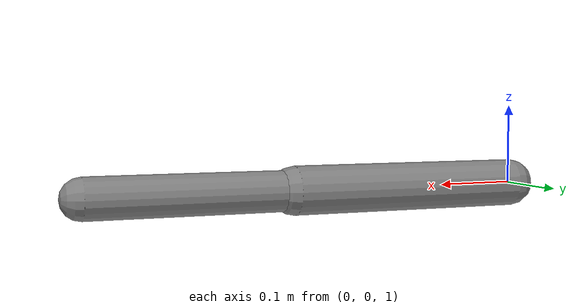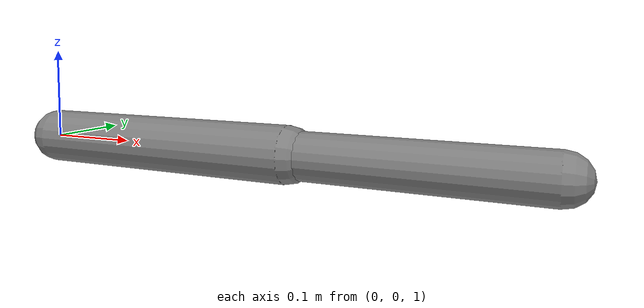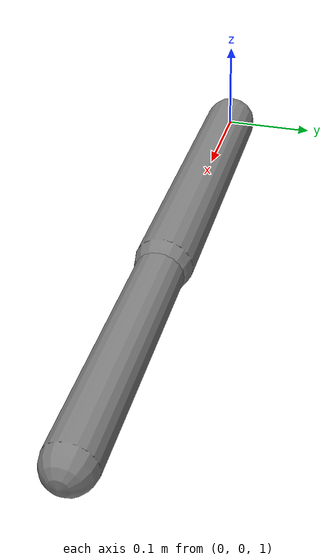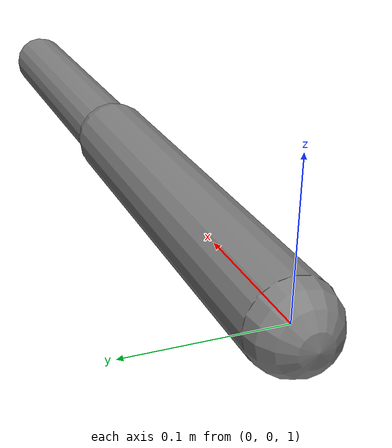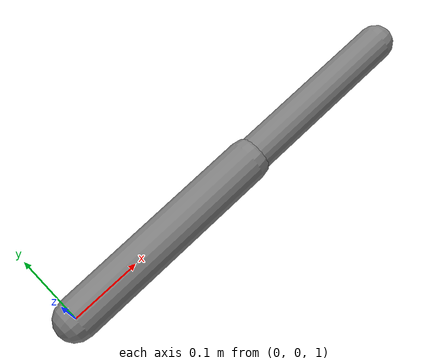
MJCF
<mujoco model="actuator_default_shortcut">
  <compiler autolimits="true"/>
  <default>
    <position ctrllimited="true" ctrlrange="-1 1" kp="30"/>
    <default class="stiff">
      <position kp="80" kv="5"/>
    </default>
    <default class="damp">
      <velocity kv="12"/>
    </default>
  </default>
  <worldbody>
    <geom name="floor" type="plane" size="3 3 0.1"/>
    <body name="arm" pos="0 0 1">
      <joint name="j0" type="hinge" axis="0 1 0" range="-90 90"/>
      <geom name="arm_g" type="capsule" size="0.03" fromto="0 0 0 0.3 0 0"/>
      <body name="fore" pos="0.3 0 0">
        <joint name="j1" type="hinge" axis="0 1 0" range="-90 90"/>
        <geom name="fore_g" type="capsule" size="0.025" fromto="0 0 0 0.25 0 0"/>
      </body>
    </body>
  </worldbody>
  <actuator>
    <!-- inherits root default kp=30 -->
    <position name="p_root" joint="j0"/>
    <!-- inherits class stiff kp=80 kv=5 -->
    <position name="p_stiff" joint="j1" class="stiff"/>
    <!-- inherits class damp kv=12 -->
    <velocity name="v_damp" joint="j1" class="damp"/>
  </actuator>
</mujoco>
